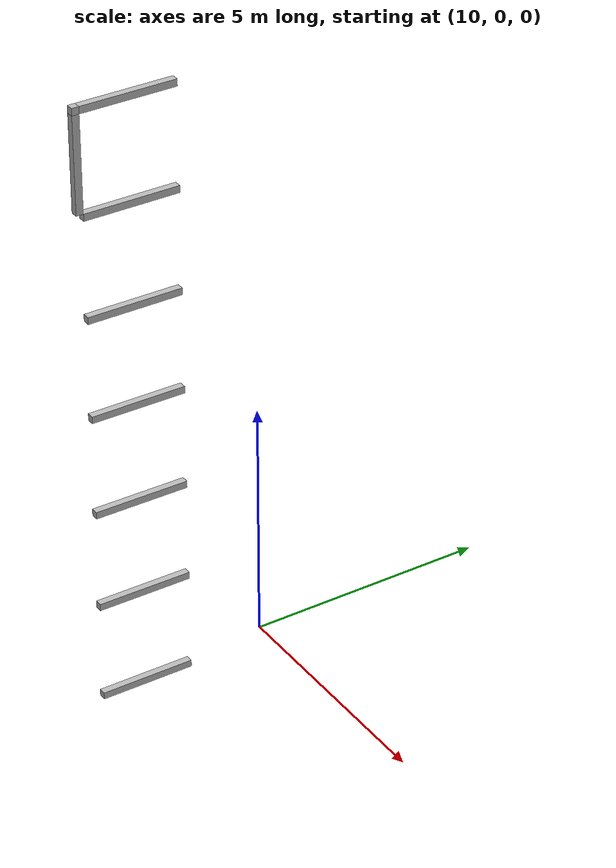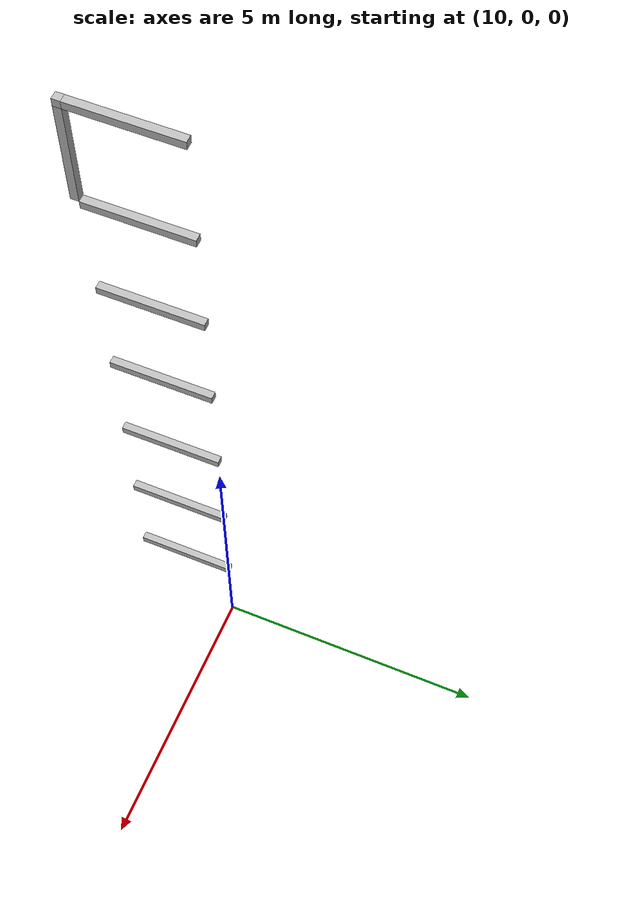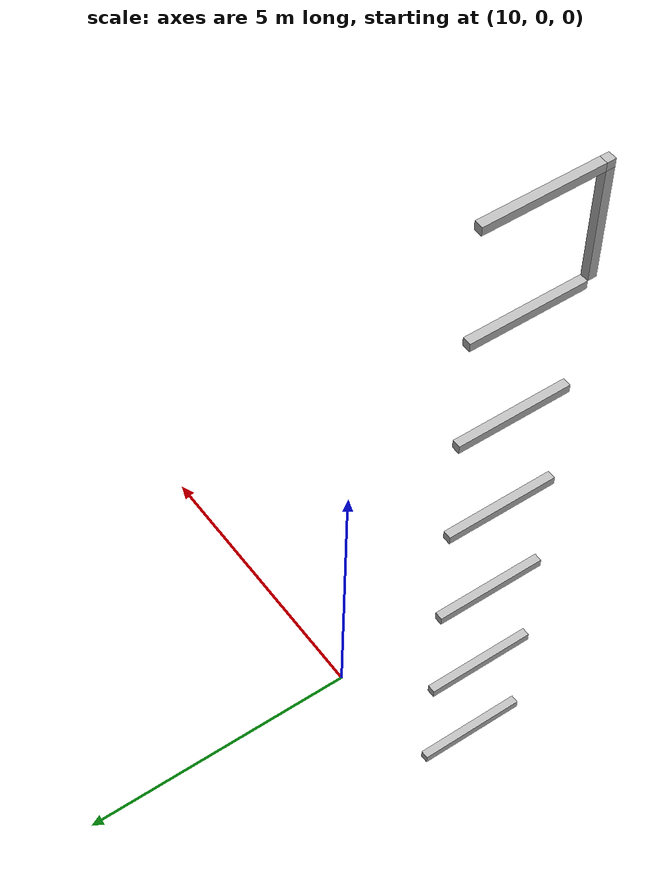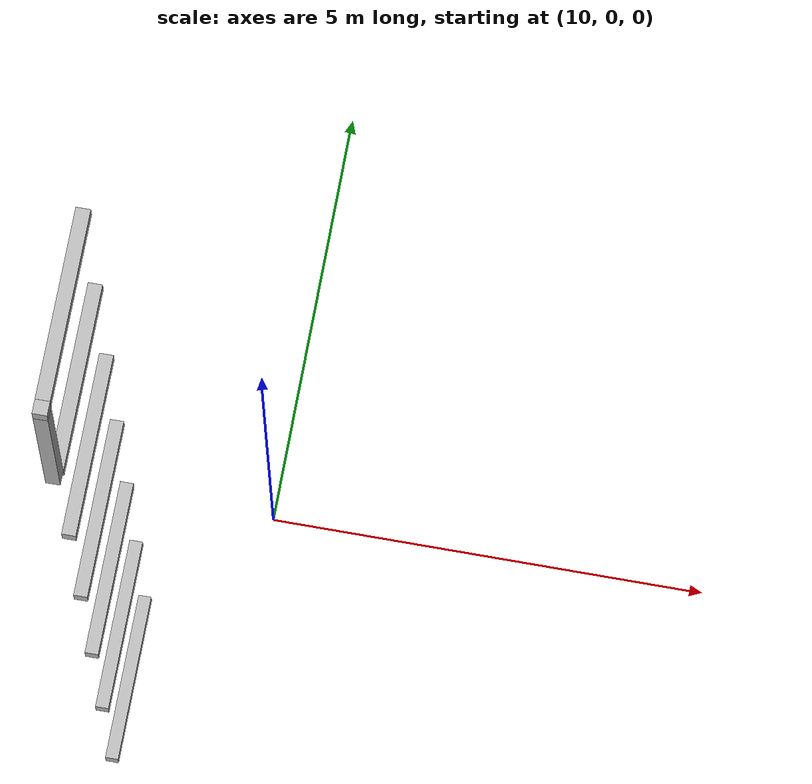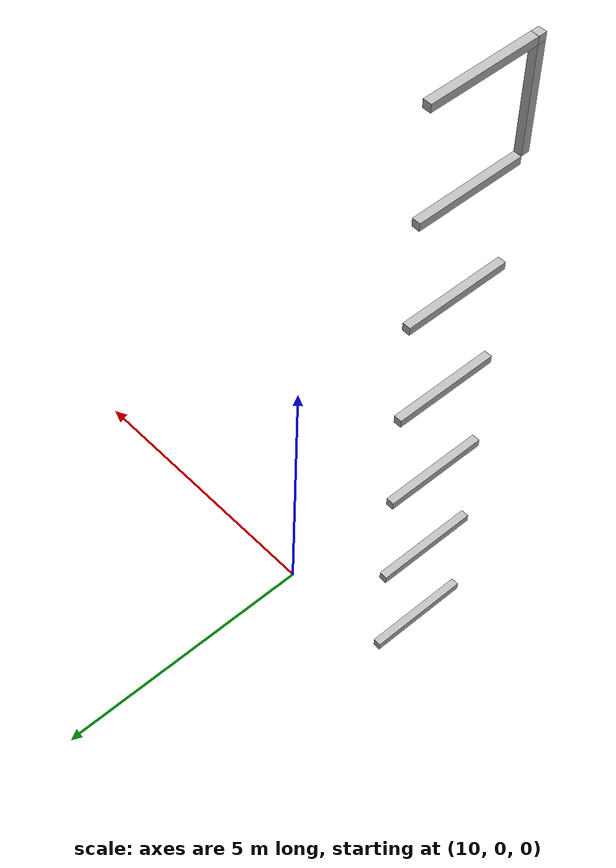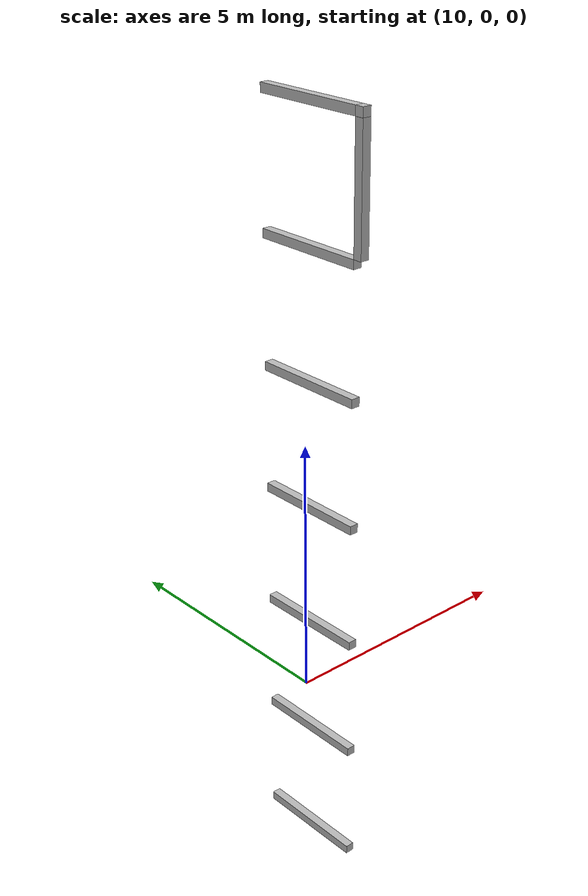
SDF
<sdf version="1.7">
 <world name="default">
  <model name="orthogonal_747_2.000.15_TS">
   <static>1</static>
   <link name="y_link_0_1_7">
    <inertial>
     <mass>1</mass>
     <inertia>
      <ixx>0.166667</ixx>
      <ixy>0</ixy>
      <ixz>0</ixz>
      <iyy>0.166667</iyy>
      <iyz>0</iyz>
      <izz>0.166667</izz>
     </inertia>
    </inertial>
    <pose>15.05 3.225 1.075 0 -0 0</pose>
    <visual name="visual_0">
     <laser_retro>309</laser_retro>
     <geometry><box><size>0.15 1e-06 0.15</size></box></geometry>
     <material>
      <script><name>Gazebo/Grey</name><uri>file://media/materials/scripts/gazebo.material</uri></script>
      <shader type="pixel"><normal_map>__default__</normal_map></shader>
      <ambient>0.678 0.498 0.659 1</ambient>
      <diffuse>0.7 0.7 0.7 1</diffuse>
      <specular>0.01 0.01 0.01 1</specular>
      <emissive>0 0 0 1</emissive>
     </material>
     <pose>0 -1 0 0 -0 0</pose>
     <transparency>1</transparency>
    </visual>
    <visual name="visual_1">
     <laser_retro>310</laser_retro>
     <geometry><box><size>0.15 1e-06 0.15</size></box></geometry>
     <material>
      <script><name>Gazebo/Grey</name><uri>file://media/materials/scripts/gazebo.material</uri></script>
      <shader type="pixel"><normal_map>__default__</normal_map></shader>
      <ambient>0.447 0.624 0.812 1</ambient>
      <diffuse>0.7 0.7 0.7 1</diffuse>
      <specular>0.01 0.01 0.01 1</specular>
      <emissive>0 0 0 1</emissive>
     </material>
     <pose>0 1 0 0 -0 0</pose>
     <transparency>1</transparency>
    </visual>
    <visual name="visual_2">
     <laser_retro>311</laser_retro>
     <geometry><box><size>0.15 2 1e-06</size></box></geometry>
     <material>
      <script><name>Gazebo/Grey</name><uri>file://media/materials/scripts/gazebo.material</uri></script>
      <shader type="pixel"><normal_map>__default__</normal_map></shader>
      <ambient>0.988 0.686 0.243 1</ambient>
      <diffuse>0.7 0.7 0.7 1</diffuse>
      <specular>0.01 0.01 0.01 1</specular>
      <emissive>0 0 0 1</emissive>
     </material>
     <pose>0 0 -0.075 0 -0 0</pose>
     <transparency>1</transparency>
    </visual>
    <visual name="visual_3">
     <laser_retro>312</laser_retro>
     <geometry><box><size>1e-06 2 0.15</size></box></geometry>
     <material>
      <script><name>Gazebo/Grey</name><uri>file://media/materials/scripts/gazebo.material</uri></script>
      <shader type="pixel"><normal_map>__default__</normal_map></shader>
      <ambient>0.988 0.914 0.31 1</ambient>
      <diffuse>0.7 0.7 0.7 1</diffuse>
      <specular>0.01 0.01 0.01 1</specular>
      <emissive>0 0 0 1</emissive>
     </material>
     <pose>0.075 0 0 0 -0 0</pose>
     <transparency>1</transparency>
    </visual>
    <visual name="visual_4">
     <laser_retro>313</laser_retro>
     <geometry><box><size>0.15 2 1e-06</size></box></geometry>
     <material>
      <script><name>Gazebo/Grey</name><uri>file://media/materials/scripts/gazebo.material</uri></script>
      <shader type="pixel"><normal_map>__default__</normal_map></shader>
      <ambient>0.937 0.161 0.161 1</ambient>
      <diffuse>0.7 0.7 0.7 1</diffuse>
      <specular>0.01 0.01 0.01 1</specular>
      <emissive>0 0 0 1</emissive>
     </material>
     <pose>0 0 0.075 0 -0 0</pose>
     <transparency>1</transparency>
    </visual>
    <visual name="visual_5">
     <laser_retro>314</laser_retro>
     <geometry><box><size>1e-06 2 0.15</size></box></geometry>
     <material>
      <script><name>Gazebo/Grey</name><uri>file://media/materials/scripts/gazebo.material</uri></script>
      <shader type="pixel"><normal_map>__default__</normal_map></shader>
      <ambient>0.541 0.886 0.204 1</ambient>
      <diffuse>0.7 0.7 0.7 1</diffuse>
      <specular>0.01 0.01 0.01 1</specular>
      <emissive>0 0 0 1</emissive>
     </material>
     <pose>-0.075 0 0 0 -0 0</pose>
     <transparency>1</transparency>
    </visual>
    <visual name="visual_texture">
     <geometry><box><size>0.149985 1.9998 0.149985</size></box></geometry>
     <material>
      <script>
       <uri>model://BASE_MODELS/simple_block_v2_textured/materials/scripts</uri>
       <uri>model://BASE_MODELS/simple_block_v2_textured/materials/textures</uri>
       <name>metal</name>
      </script>
     </material>
     <laser_retro>315</laser_retro>
    </visual>
    <collision name="collision">
     <geometry><box><size>0.15 2 0.15</size></box></geometry>
     <surface>
      <friction>
       <ode><mu>1</mu><mu2>1</mu2><fdir1>0 0 0</fdir1><slip1>0</slip1><slip2>0</slip2></ode>
       <torsional>
        <coefficient>1</coefficient>
        <patch_radius>0</patch_radius>
        <surface_radius>0</surface_radius>
        <use_patch_radius>1</use_patch_radius>
        <ode><slip>0</slip></ode>
       </torsional>
      </friction>
      <bounce><restitution_coefficient>0</restitution_coefficient><threshold>1e+06</threshold></bounce>
      <contact>
       <collide_without_contact>0</collide_without_contact>
       <collide_without_contact_bitmask>1</collide_without_contact_bitmask>
       <collide_bitmask>1</collide_bitmask>
       <ode>
        <soft_cfm>0</soft_cfm>
        <soft_erp>0.2</soft_erp>
        <kp>1e+13</kp>
        <kd>1</kd>
        <max_vel>0.01</max_vel>
        <min_depth>0</min_depth>
       </ode>
       <bullet>
        <split_impulse>1</split_impulse>
        <split_impulse_penetration_threshold>-0.01</split_impulse_penetration_threshold>
        <soft_cfm>0</soft_cfm>
        <soft_erp>0.2</soft_erp>
        <kp>1e+13</kp>
        <kd>1</kd>
       </bullet>
      </contact>
     </surface>
    </collision>
   </link>
   <link name="y_link_1_1_7">
    <inertial>
     <mass>1</mass>
     <inertia>
      <ixx>0.166667</ixx>
      <ixy>0</ixy>
      <ixz>0</ixz>
      <iyy>0.166667</iyy>
      <iyz>0</iyz>
      <izz>0.166667</izz>
     </inertia>
    </inertial>
    <pose>15.05 3.225 3.225 0 -0 0</pose>
    <visual name="visual_0">
     <laser_retro>1121</laser_retro>
     <geometry><box><size>0.15 1e-06 0.15</size></box></geometry>
     <material>
      <script><name>Gazebo/Grey</name><uri>file://media/materials/scripts/gazebo.material</uri></script>
      <shader type="pixel"><normal_map>__default__</normal_map></shader>
      <ambient>0.678 0.498 0.659 1</ambient>
      <diffuse>0.7 0.7 0.7 1</diffuse>
      <specular>0.01 0.01 0.01 1</specular>
      <emissive>0 0 0 1</emissive>
     </material>
     <pose>0 -1 0 0 -0 0</pose>
     <transparency>1</transparency>
    </visual>
    <visual name="visual_1">
     <laser_retro>1122</laser_retro>
     <geometry><box><size>0.15 1e-06 0.15</size></box></geometry>
     <material>
      <script><name>Gazebo/Grey</name><uri>file://media/materials/scripts/gazebo.material</uri></script>
      <shader type="pixel"><normal_map>__default__</normal_map></shader>
      <ambient>0.447 0.624 0.812 1</ambient>
      <diffuse>0.7 0.7 0.7 1</diffuse>
      <specular>0.01 0.01 0.01 1</specular>
      <emissive>0 0 0 1</emissive>
     </material>
     <pose>0 1 0 0 -0 0</pose>
     <transparency>1</transparency>
    </visual>
    <visual name="visual_2">
     <laser_retro>1123</laser_retro>
     <geometry><box><size>0.15 2 1e-06</size></box></geometry>
     <material>
      <script><name>Gazebo/Grey</name><uri>file://media/materials/scripts/gazebo.material</uri></script>
      <shader type="pixel"><normal_map>__default__</normal_map></shader>
      <ambient>0.988 0.686 0.243 1</ambient>
      <diffuse>0.7 0.7 0.7 1</diffuse>
      <specular>0.01 0.01 0.01 1</specular>
      <emissive>0 0 0 1</emissive>
     </material>
     <pose>0 0 -0.075 0 -0 0</pose>
     <transparency>1</transparency>
    </visual>
    <visual name="visual_3">
     <laser_retro>1124</laser_retro>
     <geometry><box><size>1e-06 2 0.15</size></box></geometry>
     <material>
      <script><name>Gazebo/Grey</name><uri>file://media/materials/scripts/gazebo.material</uri></script>
      <shader type="pixel"><normal_map>__default__</normal_map></shader>
      <ambient>0.988 0.914 0.31 1</ambient>
      <diffuse>0.7 0.7 0.7 1</diffuse>
      <specular>0.01 0.01 0.01 1</specular>
      <emissive>0 0 0 1</emissive>
     </material>
     <pose>0.075 0 0 0 -0 0</pose>
     <transparency>1</transparency>
    </visual>
    <visual name="visual_4">
     <laser_retro>1125</laser_retro>
     <geometry><box><size>0.15 2 1e-06</size></box></geometry>
     <material>
      <script><name>Gazebo/Grey</name><uri>file://media/materials/scripts/gazebo.material</uri></script>
      <shader type="pixel"><normal_map>__default__</normal_map></shader>
      <ambient>0.937 0.161 0.161 1</ambient>
      <diffuse>0.7 0.7 0.7 1</diffuse>
      <specular>0.01 0.01 0.01 1</specular>
      <emissive>0 0 0 1</emissive>
     </material>
     <pose>0 0 0.075 0 -0 0</pose>
     <transparency>1</transparency>
    </visual>
    <visual name="visual_5">
     <laser_retro>1126</laser_retro>
     <geometry><box><size>1e-06 2 0.15</size></box></geometry>
     <material>
      <script><name>Gazebo/Grey</name><uri>file://media/materials/scripts/gazebo.material</uri></script>
      <shader type="pixel"><normal_map>__default__</normal_map></shader>
      <ambient>0.541 0.886 0.204 1</ambient>
      <diffuse>0.7 0.7 0.7 1</diffuse>
      <specular>0.01 0.01 0.01 1</specular>
      <emissive>0 0 0 1</emissive>
     </material>
     <pose>-0.075 0 0 0 -0 0</pose>
     <transparency>1</transparency>
    </visual>
    <visual name="visual_texture">
     <geometry><box><size>0.149985 1.9998 0.149985</size></box></geometry>
     <material>
      <script>
       <uri>model://BASE_MODELS/simple_block_v2_textured/materials/scripts</uri>
       <uri>model://BASE_MODELS/simple_block_v2_textured/materials/textures</uri>
       <name>metal</name>
      </script>
     </material>
     <laser_retro>1127</laser_retro>
    </visual>
    <collision name="collision">
     <geometry><box><size>0.15 2 0.15</size></box></geometry>
     <surface>
      <friction>
       <ode><mu>1</mu><mu2>1</mu2><fdir1>0 0 0</fdir1><slip1>0</slip1><slip2>0</slip2></ode>
       <torsional>
        <coefficient>1</coefficient>
        <patch_radius>0</patch_radius>
        <surface_radius>0</surface_radius>
        <use_patch_radius>1</use_patch_radius>
        <ode><slip>0</slip></ode>
       </torsional>
      </friction>
      <bounce><restitution_coefficient>0</restitution_coefficient><threshold>1e+06</threshold></bounce>
      <contact>
       <collide_without_contact>0</collide_without_contact>
       <collide_without_contact_bitmask>1</collide_without_contact_bitmask>
       <collide_bitmask>1</collide_bitmask>
       <ode>
        <soft_cfm>0</soft_cfm>
        <soft_erp>0.2</soft_erp>
        <kp>1e+13</kp>
        <kd>1</kd>
        <max_vel>0.01</max_vel>
        <min_depth>0</min_depth>
       </ode>
       <bullet>
        <split_impulse>1</split_impulse>
        <split_impulse_penetration_threshold>-0.01</split_impulse_penetration_threshold>
        <soft_cfm>0</soft_cfm>
        <soft_erp>0.2</soft_erp>
        <kp>1e+13</kp>
        <kd>1</kd>
       </bullet>
      </contact>
     </surface>
    </collision>
   </link>
   <link name="y_link_2_1_7">
    <inertial>
     <mass>1</mass>
     <inertia>
      <ixx>0.166667</ixx>
      <ixy>0</ixy>
      <ixz>0</ixz>
      <iyy>0.166667</iyy>
      <iyz>0</iyz>
      <izz>0.166667</izz>
     </inertia>
    </inertial>
    <pose>15.05 3.225 5.375 0 -0 0</pose>
    <visual name="visual_0">
     <laser_retro>2024</laser_retro>
     <geometry><box><size>0.15 1e-06 0.15</size></box></geometry>
     <material>
      <script><name>Gazebo/Grey</name><uri>file://media/materials/scripts/gazebo.material</uri></script>
      <shader type="pixel"><normal_map>__default__</normal_map></shader>
      <ambient>0.678 0.498 0.659 1</ambient>
      <diffuse>0.7 0.7 0.7 1</diffuse>
      <specular>0.01 0.01 0.01 1</specular>
      <emissive>0 0 0 1</emissive>
     </material>
     <pose>0 -1 0 0 -0 0</pose>
     <transparency>1</transparency>
    </visual>
    <visual name="visual_1">
     <laser_retro>2025</laser_retro>
     <geometry><box><size>0.15 1e-06 0.15</size></box></geometry>
     <material>
      <script><name>Gazebo/Grey</name><uri>file://media/materials/scripts/gazebo.material</uri></script>
      <shader type="pixel"><normal_map>__default__</normal_map></shader>
      <ambient>0.447 0.624 0.812 1</ambient>
      <diffuse>0.7 0.7 0.7 1</diffuse>
      <specular>0.01 0.01 0.01 1</specular>
      <emissive>0 0 0 1</emissive>
     </material>
     <pose>0 1 0 0 -0 0</pose>
     <transparency>1</transparency>
    </visual>
    <visual name="visual_2">
     <laser_retro>2026</laser_retro>
     <geometry><box><size>0.15 2 1e-06</size></box></geometry>
     <material>
      <script><name>Gazebo/Grey</name><uri>file://media/materials/scripts/gazebo.material</uri></script>
      <shader type="pixel"><normal_map>__default__</normal_map></shader>
      <ambient>0.988 0.686 0.243 1</ambient>
      <diffuse>0.7 0.7 0.7 1</diffuse>
      <specular>0.01 0.01 0.01 1</specular>
      <emissive>0 0 0 1</emissive>
     </material>
     <pose>0 0 -0.075 0 -0 0</pose>
     <transparency>1</transparency>
    </visual>
    <visual name="visual_3">
     <laser_retro>2027</laser_retro>
     <geometry><box><size>1e-06 2 0.15</size></box></geometry>
     <material>
      <script><name>Gazebo/Grey</name><uri>file://media/materials/scripts/gazebo.material</uri></script>
      <shader type="pixel"><normal_map>__default__</normal_map></shader>
      <ambient>0.988 0.914 0.31 1</ambient>
      <diffuse>0.7 0.7 0.7 1</diffuse>
      <specular>0.01 0.01 0.01 1</specular>
      <emissive>0 0 0 1</emissive>
     </material>
     <pose>0.075 0 0 0 -0 0</pose>
     <transparency>1</transparency>
    </visual>
    <visual name="visual_4">
     <laser_retro>2028</laser_retro>
     <geometry><box><size>0.15 2 1e-06</size></box></geometry>
     <material>
      <script><name>Gazebo/Grey</name><uri>file://media/materials/scripts/gazebo.material</uri></script>
      <shader type="pixel"><normal_map>__default__</normal_map></shader>
      <ambient>0.937 0.161 0.161 1</ambient>
      <diffuse>0.7 0.7 0.7 1</diffuse>
      <specular>0.01 0.01 0.01 1</specular>
      <emissive>0 0 0 1</emissive>
     </material>
     <pose>0 0 0.075 0 -0 0</pose>
     <transparency>1</transparency>
    </visual>
    <visual name="visual_5">
     <laser_retro>2029</laser_retro>
     <geometry><box><size>1e-06 2 0.15</size></box></geometry>
     <material>
      <script><name>Gazebo/Grey</name><uri>file://media/materials/scripts/gazebo.material</uri></script>
      <shader type="pixel"><normal_map>__default__</normal_map></shader>
      <ambient>0.541 0.886 0.204 1</ambient>
      <diffuse>0.7 0.7 0.7 1</diffuse>
      <specular>0.01 0.01 0.01 1</specular>
      <emissive>0 0 0 1</emissive>
     </material>
     <pose>-0.075 0 0 0 -0 0</pose>
     <transparency>1</transparency>
    </visual>
    <visual name="visual_texture">
     <geometry><box><size>0.149985 1.9998 0.149985</size></box></geometry>
     <material>
      <script>
       <uri>model://BASE_MODELS/simple_block_v2_textured/materials/scripts</uri>
       <uri>model://BASE_MODELS/simple_block_v2_textured/materials/textures</uri>
       <name>metal</name>
      </script>
     </material>
     <laser_retro>2030</laser_retro>
    </visual>
    <collision name="collision">
     <geometry><box><size>0.15 2 0.15</size></box></geometry>
     <surface>
      <friction>
       <ode><mu>1</mu><mu2>1</mu2><fdir1>0 0 0</fdir1><slip1>0</slip1><slip2>0</slip2></ode>
       <torsional>
        <coefficient>1</coefficient>
        <patch_radius>0</patch_radius>
        <surface_radius>0</surface_radius>
        <use_patch_radius>1</use_patch_radius>
        <ode><slip>0</slip></ode>
       </torsional>
      </friction>
      <bounce><restitution_coefficient>0</restitution_coefficient><threshold>1e+06</threshold></bounce>
      <contact>
       <collide_without_contact>0</collide_without_contact>
       <collide_without_contact_bitmask>1</collide_without_contact_bitmask>
       <collide_bitmask>1</collide_bitmask>
       <ode>
        <soft_cfm>0</soft_cfm>
        <soft_erp>0.2</soft_erp>
        <kp>1e+13</kp>
        <kd>1</kd>
        <max_vel>0.01</max_vel>
        <min_depth>0</min_depth>
       </ode>
       <bullet>
        <split_impulse>1</split_impulse>
        <split_impulse_penetration_threshold>-0.01</split_impulse_penetration_threshold>
        <soft_cfm>0</soft_cfm>
        <soft_erp>0.2</soft_erp>
        <kp>1e+13</kp>
        <kd>1</kd>
       </bullet>
      </contact>
     </surface>
    </collision>
   </link>
   <link name="y_link_3_1_7">
    <inertial>
     <mass>1</mass>
     <inertia>
      <ixx>0.166667</ixx>
      <ixy>0</ixy>
      <ixz>0</ixz>
      <iyy>0.166667</iyy>
      <iyz>0</iyz>
      <izz>0.166667</izz>
     </inertia>
    </inertial>
    <pose>15.05 3.225 7.525 0 -0 0</pose>
    <visual name="visual_0">
     <laser_retro>2927</laser_retro>
     <geometry><box><size>0.15 1e-06 0.15</size></box></geometry>
     <material>
      <script><name>Gazebo/Grey</name><uri>file://media/materials/scripts/gazebo.material</uri></script>
      <shader type="pixel"><normal_map>__default__</normal_map></shader>
      <ambient>0.678 0.498 0.659 1</ambient>
      <diffuse>0.7 0.7 0.7 1</diffuse>
      <specular>0.01 0.01 0.01 1</specular>
      <emissive>0 0 0 1</emissive>
     </material>
     <pose>0 -1 0 0 -0 0</pose>
     <transparency>1</transparency>
    </visual>
    <visual name="visual_1">
     <laser_retro>2928</laser_retro>
     <geometry><box><size>0.15 1e-06 0.15</size></box></geometry>
     <material>
      <script><name>Gazebo/Grey</name><uri>file://media/materials/scripts/gazebo.material</uri></script>
      <shader type="pixel"><normal_map>__default__</normal_map></shader>
      <ambient>0.447 0.624 0.812 1</ambient>
      <diffuse>0.7 0.7 0.7 1</diffuse>
      <specular>0.01 0.01 0.01 1</specular>
      <emissive>0 0 0 1</emissive>
     </material>
     <pose>0 1 0 0 -0 0</pose>
     <transparency>1</transparency>
    </visual>
    <visual name="visual_2">
     <laser_retro>2929</laser_retro>
     <geometry><box><size>0.15 2 1e-06</size></box></geometry>
     <material>
      <script><name>Gazebo/Grey</name><uri>file://media/materials/scripts/gazebo.material</uri></script>
      <shader type="pixel"><normal_map>__default__</normal_map></shader>
      <ambient>0.988 0.686 0.243 1</ambient>
      <diffuse>0.7 0.7 0.7 1</diffuse>
      <specular>0.01 0.01 0.01 1</specular>
      <emissive>0 0 0 1</emissive>
     </material>
     <pose>0 0 -0.075 0 -0 0</pose>
     <transparency>1</transparency>
    </visual>
    <visual name="visual_3">
     <laser_retro>2930</laser_retro>
     <geometry><box><size>1e-06 2 0.15</size></box></geometry>
     <material>
      <script><name>Gazebo/Grey</name><uri>file://media/materials/scripts/gazebo.material</uri></script>
      <shader type="pixel"><normal_map>__default__</normal_map></shader>
      <ambient>0.988 0.914 0.31 1</ambient>
      <diffuse>0.7 0.7 0.7 1</diffuse>
      <specular>0.01 0.01 0.01 1</specular>
      <emissive>0 0 0 1</emissive>
     </material>
     <pose>0.075 0 0 0 -0 0</pose>
     <transparency>1</transparency>
    </visual>
    <visual name="visual_4">
     <laser_retro>2931</laser_retro>
     <geometry><box><size>0.15 2 1e-06</size></box></geometry>
     <material>
      <script><name>Gazebo/Grey</name><uri>file://media/materials/scripts/gazebo.material</uri></script>
      <shader type="pixel"><normal_map>__default__</normal_map></shader>
      <ambient>0.937 0.161 0.161 1</ambient>
      <diffuse>0.7 0.7 0.7 1</diffuse>
      <specular>0.01 0.01 0.01 1</specular>
      <emissive>0 0 0 1</emissive>
     </material>
     <pose>0 0 0.075 0 -0 0</pose>
     <transparency>1</transparency>
    </visual>
    <visual name="visual_5">
     <laser_retro>2932</laser_retro>
     <geometry><box><size>1e-06 2 0.15</size></box></geometry>
     <material>
      <script><name>Gazebo/Grey</name><uri>file://media/materials/scripts/gazebo.material</uri></script>
      <shader type="pixel"><normal_map>__default__</normal_map></shader>
      <ambient>0.541 0.886 0.204 1</ambient>
      <diffuse>0.7 0.7 0.7 1</diffuse>
      <specular>0.01 0.01 0.01 1</specular>
      <emissive>0 0 0 1</emissive>
     </material>
     <pose>-0.075 0 0 0 -0 0</pose>
     <transparency>1</transparency>
    </visual>
    <visual name="visual_texture">
     <geometry><box><size>0.149985 1.9998 0.149985</size></box></geometry>
     <material>
      <script>
       <uri>model://BASE_MODELS/simple_block_v2_textured/materials/scripts</uri>
       <uri>model://BASE_MODELS/simple_block_v2_textured/materials/textures</uri>
       <name>metal</name>
      </script>
     </material>
     <laser_retro>2933</laser_retro>
    </visual>
    <collision name="collision">
     <geometry><box><size>0.15 2 0.15</size></box></geometry>
     <surface>
      <friction>
       <ode><mu>1</mu><mu2>1</mu2><fdir1>0 0 0</fdir1><slip1>0</slip1><slip2>0</slip2></ode>
       <torsional>
        <coefficient>1</coefficient>
        <patch_radius>0</patch_radius>
        <surface_radius>0</surface_radius>
        <use_patch_radius>1</use_patch_radius>
        <ode><slip>0</slip></ode>
       </torsional>
      </friction>
      <bounce><restitution_coefficient>0</restitution_coefficient><threshold>1e+06</threshold></bounce>
      <contact>
       <collide_without_contact>0</collide_without_contact>
       <collide_without_contact_bitmask>1</collide_without_contact_bitmask>
       <collide_bitmask>1</collide_bitmask>
       <ode>
        <soft_cfm>0</soft_cfm>
        <soft_erp>0.2</soft_erp>
        <kp>1e+13</kp>
        <kd>1</kd>
        <max_vel>0.01</max_vel>
        <min_depth>0</min_depth>
       </ode>
       <bullet>
        <split_impulse>1</split_impulse>
        <split_impulse_penetration_threshold>-0.01</split_impulse_penetration_threshold>
        <soft_cfm>0</soft_cfm>
        <soft_erp>0.2</soft_erp>
        <kp>1e+13</kp>
        <kd>1</kd>
       </bullet>
      </contact>
     </surface>
    </collision>
   </link>
   <link name="y_link_4_1_7">
    <inertial>
     <mass>1</mass>
     <inertia>
      <ixx>0.166667</ixx>
      <ixy>0</ixy>
      <ixz>0</ixz>
      <iyy>0.166667</iyy>
      <iyz>0</iyz>
      <izz>0.166667</izz>
     </inertia>
    </inertial>
    <pose>15.05 3.225 9.675 0 -0 0</pose>
    <visual name="visual_0">
     <laser_retro>3830</laser_retro>
     <geometry><box><size>0.15 1e-06 0.15</size></box></geometry>
     <material>
      <script><name>Gazebo/Grey</name><uri>file://media/materials/scripts/gazebo.material</uri></script>
      <shader type="pixel"><normal_map>__default__</normal_map></shader>
      <ambient>0.678 0.498 0.659 1</ambient>
      <diffuse>0.7 0.7 0.7 1</diffuse>
      <specular>0.01 0.01 0.01 1</specular>
      <emissive>0 0 0 1</emissive>
     </material>
     <pose>0 -1 0 0 -0 0</pose>
     <transparency>1</transparency>
    </visual>
    <visual name="visual_1">
     <laser_retro>3831</laser_retro>
     <geometry><box><size>0.15 1e-06 0.15</size></box></geometry>
     <material>
      <script><name>Gazebo/Grey</name><uri>file://media/materials/scripts/gazebo.material</uri></script>
      <shader type="pixel"><normal_map>__default__</normal_map></shader>
      <ambient>0.447 0.624 0.812 1</ambient>
      <diffuse>0.7 0.7 0.7 1</diffuse>
      <specular>0.01 0.01 0.01 1</specular>
      <emissive>0 0 0 1</emissive>
     </material>
     <pose>0 1 0 0 -0 0</pose>
     <transparency>1</transparency>
    </visual>
    <visual name="visual_2">
     <laser_retro>3832</laser_retro>
     <geometry><box><size>0.15 2 1e-06</size></box></geometry>
     <material>
      <script><name>Gazebo/Grey</name><uri>file://media/materials/scripts/gazebo.material</uri></script>
      <shader type="pixel"><normal_map>__default__</normal_map></shader>
      <ambient>0.988 0.686 0.243 1</ambient>
      <diffuse>0.7 0.7 0.7 1</diffuse>
      <specular>0.01 0.01 0.01 1</specular>
      <emissive>0 0 0 1</emissive>
     </material>
     <pose>0 0 -0.075 0 -0 0</pose>
     <transparency>1</transparency>
    </visual>
    <visual name="visual_3">
     <laser_retro>3833</laser_retro>
     <geometry><box><size>1e-06 2 0.15</size></box></geometry>
     <material>
      <script><name>Gazebo/Grey</name><uri>file://media/materials/scripts/gazebo.material</uri></script>
      <shader type="pixel"><normal_map>__default__</normal_map></shader>
      <ambient>0.988 0.914 0.31 1</ambient>
      <diffuse>0.7 0.7 0.7 1</diffuse>
      <specular>0.01 0.01 0.01 1</specular>
      <emissive>0 0 0 1</emissive>
     </material>
     <pose>0.075 0 0 0 -0 0</pose>
     <transparency>1</transparency>
    </visual>
    <visual name="visual_4">
     <laser_retro>3834</laser_retro>
     <geometry><box><size>0.15 2 1e-06</size></box></geometry>
     <material>
      <script><name>Gazebo/Grey</name><uri>file://media/materials/scripts/gazebo.material</uri></script>
      <shader type="pixel"><normal_map>__default__</normal_map></shader>
      <ambient>0.937 0.161 0.161 1</ambient>
      <diffuse>0.7 0.7 0.7 1</diffuse>
      <specular>0.01 0.01 0.01 1</specular>
      <emissive>0 0 0 1</emissive>
     </material>
     <pose>0 0 0.075 0 -0 0</pose>
     <transparency>1</transparency>
    </visual>
    <visual name="visual_5">
     <laser_retro>3835</laser_retro>
     <geometry><box><size>1e-06 2 0.15</size></box></geometry>
     <material>
      <script><name>Gazebo/Grey</name><uri>file://media/materials/scripts/gazebo.material</uri></script>
      <shader type="pixel"><normal_map>__default__</normal_map></shader>
      <ambient>0.541 0.886 0.204 1</ambient>
      <diffuse>0.7 0.7 0.7 1</diffuse>
      <specular>0.01 0.01 0.01 1</specular>
      <emissive>0 0 0 1</emissive>
     </material>
     <pose>-0.075 0 0 0 -0 0</pose>
     <transparency>1</transparency>
    </visual>
    <visual name="visual_texture">
     <geometry><box><size>0.149985 1.9998 0.149985</size></box></geometry>
     <material>
      <script>
       <uri>model://BASE_MODELS/simple_block_v2_textured/materials/scripts</uri>
       <uri>model://BASE_MODELS/simple_block_v2_textured/materials/textures</uri>
       <name>metal</name>
      </script>
     </material>
     <laser_retro>3836</laser_retro>
    </visual>
    <collision name="collision">
     <geometry><box><size>0.15 2 0.15</size></box></geometry>
     <surface>
      <friction>
       <ode><mu>1</mu><mu2>1</mu2><fdir1>0 0 0</fdir1><slip1>0</slip1><slip2>0</slip2></ode>
       <torsional>
        <coefficient>1</coefficient>
        <patch_radius>0</patch_radius>
        <surface_radius>0</surface_radius>
        <use_patch_radius>1</use_patch_radius>
        <ode><slip>0</slip></ode>
       </torsional>
      </friction>
      <bounce><restitution_coefficient>0</restitution_coefficient><threshold>1e+06</threshold></bounce>
      <contact>
       <collide_without_contact>0</collide_without_contact>
       <collide_without_contact_bitmask>1</collide_without_contact_bitmask>
       <collide_bitmask>1</collide_bitmask>
       <ode>
        <soft_cfm>0</soft_cfm>
        <soft_erp>0.2</soft_erp>
        <kp>1e+13</kp>
        <kd>1</kd>
        <max_vel>0.01</max_vel>
        <min_depth>0</min_depth>
       </ode>
       <bullet>
        <split_impulse>1</split_impulse>
        <split_impulse_penetration_threshold>-0.01</split_impulse_penetration_threshold>
        <soft_cfm>0</soft_cfm>
        <soft_erp>0.2</soft_erp>
        <kp>1e+13</kp>
        <kd>1</kd>
       </bullet>
      </contact>
     </surface>
    </collision>
   </link>
   <link name="y_link_5_1_7">
    <inertial>
     <mass>1</mass>
     <inertia>
      <ixx>0.166667</ixx>
      <ixy>0</ixy>
      <ixz>0</ixz>
      <iyy>0.166667</iyy>
      <iyz>0</iyz>
      <izz>0.166667</izz>
     </inertia>
    </inertial>
    <pose>15.05 3.225 11.825 0 -0 0</pose>
    <visual name="visual_0">
     <laser_retro>4733</laser_retro>
     <geometry><box><size>0.15 1e-06 0.15</size></box></geometry>
     <material>
      <script><name>Gazebo/Grey</name><uri>file://media/materials/scripts/gazebo.material</uri></script>
      <shader type="pixel"><normal_map>__default__</normal_map></shader>
      <ambient>0.678 0.498 0.659 1</ambient>
      <diffuse>0.7 0.7 0.7 1</diffuse>
      <specular>0.01 0.01 0.01 1</specular>
      <emissive>0 0 0 1</emissive>
     </material>
     <pose>0 -1 0 0 -0 0</pose>
     <transparency>1</transparency>
    </visual>
    <visual name="visual_1">
     <laser_retro>4734</laser_retro>
     <geometry><box><size>0.15 1e-06 0.15</size></box></geometry>
     <material>
      <script><name>Gazebo/Grey</name><uri>file://media/materials/scripts/gazebo.material</uri></script>
      <shader type="pixel"><normal_map>__default__</normal_map></shader>
      <ambient>0.447 0.624 0.812 1</ambient>
      <diffuse>0.7 0.7 0.7 1</diffuse>
      <specular>0.01 0.01 0.01 1</specular>
      <emissive>0 0 0 1</emissive>
     </material>
     <pose>0 1 0 0 -0 0</pose>
     <transparency>1</transparency>
    </visual>
    <visual name="visual_2">
     <laser_retro>4735</laser_retro>
     <geometry><box><size>0.15 2 1e-06</size></box></geometry>
     <material>
      <script><name>Gazebo/Grey</name><uri>file://media/materials/scripts/gazebo.material</uri></script>
      <shader type="pixel"><normal_map>__default__</normal_map></shader>
      <ambient>0.988 0.686 0.243 1</ambient>
      <diffuse>0.7 0.7 0.7 1</diffuse>
      <specular>0.01 0.01 0.01 1</specular>
      <emissive>0 0 0 1</emissive>
     </material>
     <pose>0 0 -0.075 0 -0 0</pose>
     <transparency>1</transparency>
    </visual>
    <visual name="visual_3">
     <laser_retro>4736</laser_retro>
     <geometry><box><size>1e-06 2 0.15</size></box></geometry>
     <material>
      <script><name>Gazebo/Grey</name><uri>file://media/materials/scripts/gazebo.material</uri></script>
      <shader type="pixel"><normal_map>__default__</normal_map></shader>
      <ambient>0.988 0.914 0.31 1</ambient>
      <diffuse>0.7 0.7 0.7 1</diffuse>
      <specular>0.01 0.01 0.01 1</specular>
      <emissive>0 0 0 1</emissive>
     </material>
     <pose>0.075 0 0 0 -0 0</pose>
     <transparency>1</transparency>
    </visual>
    <visual name="visual_4">
     <laser_retro>4737</laser_retro>
     <geometry><box><size>0.15 2 1e-06</size></box></geometry>
     <material>
      <script><name>Gazebo/Grey</name><uri>file://media/materials/scripts/gazebo.material</uri></script>
      <shader type="pixel"><normal_map>__default__</normal_map></shader>
      <ambient>0.937 0.161 0.161 1</ambient>
      <diffuse>0.7 0.7 0.7 1</diffuse>
      <specular>0.01 0.01 0.01 1</specular>
      <emissive>0 0 0 1</emissive>
     </material>
     <pose>0 0 0.075 0 -0 0</pose>
     <transparency>1</transparency>
    </visual>
    <visual name="visual_5">
     <laser_retro>4738</laser_retro>
     <geometry><box><size>1e-06 2 0.15</size></box></geometry>
     <material>
      <script><name>Gazebo/Grey</name><uri>file://media/materials/scripts/gazebo.material</uri></script>
      <shader type="pixel"><normal_map>__default__</normal_map></shader>
      <ambient>0.541 0.886 0.204 1</ambient>
      <diffuse>0.7 0.7 0.7 1</diffuse>
      <specular>0.01 0.01 0.01 1</specular>
      <emissive>0 0 0 1</emissive>
     </material>
     <pose>-0.075 0 0 0 -0 0</pose>
     <transparency>1</transparency>
    </visual>
    <visual name="visual_texture">
     <geometry><box><size>0.149985 1.9998 0.149985</size></box></geometry>
     <material>
      <script>
       <uri>model://BASE_MODELS/simple_block_v2_textured/materials/scripts</uri>
       <uri>model://BASE_MODELS/simple_block_v2_textured/materials/textures</uri>
       <name>metal</name>
      </script>
     </material>
     <laser_retro>4739</laser_retro>
    </visual>
    <collision name="collision">
     <geometry><box><size>0.15 2 0.15</size></box></geometry>
     <surface>
      <friction>
       <ode><mu>1</mu><mu2>1</mu2><fdir1>0 0 0</fdir1><slip1>0</slip1><slip2>0</slip2></ode>
       <torsional>
        <coefficient>1</coefficient>
        <patch_radius>0</patch_radius>
        <surface_radius>0</surface_radius>
        <use_patch_radius>1</use_patch_radius>
        <ode><slip>0</slip></ode>
       </torsional>
      </friction>
      <bounce><restitution_coefficient>0</restitution_coefficient><threshold>1e+06</threshold></bounce>
      <contact>
       <collide_without_contact>0</collide_without_contact>
       <collide_without_contact_bitmask>1</collide_without_contact_bitmask>
       <collide_bitmask>1</collide_bitmask>
       <ode>
        <soft_cfm>0</soft_cfm>
        <soft_erp>0.2</soft_erp>
        <kp>1e+13</kp>
        <kd>1</kd>
        <max_vel>0.01</max_vel>
        <min_depth>0</min_depth>
       </ode>
       <bullet>
        <split_impulse>1</split_impulse>
        <split_impulse_penetration_threshold>-0.01</split_impulse_penetration_threshold>
        <soft_cfm>0</soft_cfm>
        <soft_erp>0.2</soft_erp>
        <kp>1e+13</kp>
        <kd>1</kd>
       </bullet>
      </contact>
     </surface>
    </collision>
   </link>
   <link name="y_link_6_1_7">
    <inertial>
     <mass>1</mass>
     <inertia>
      <ixx>0.166667</ixx>
      <ixy>0</ixy>
      <ixz>0</ixz>
      <iyy>0.166667</iyy>
      <iyz>0</iyz>
      <izz>0.166667</izz>
     </inertia>
    </inertial>
    <pose>15.05 3.225 13.975 0 -0 0</pose>
    <visual name="visual_0">
     <laser_retro>5678</laser_retro>
     <geometry><box><size>0.15 1e-06 0.15</size></box></geometry>
     <material>
      <script><name>Gazebo/Grey</name><uri>file://media/materials/scripts/gazebo.material</uri></script>
      <shader type="pixel"><normal_map>__default__</normal_map></shader>
      <ambient>0.678 0.498 0.659 1</ambient>
      <diffuse>0.7 0.7 0.7 1</diffuse>
      <specular>0.01 0.01 0.01 1</specular>
      <emissive>0 0 0 1</emissive>
     </material>
     <pose>0 -1 0 0 -0 0</pose>
     <transparency>1</transparency>
    </visual>
    <visual name="visual_1">
     <laser_retro>5679</laser_retro>
     <geometry><box><size>0.15 1e-06 0.15</size></box></geometry>
     <material>
      <script><name>Gazebo/Grey</name><uri>file://media/materials/scripts/gazebo.material</uri></script>
      <shader type="pixel"><normal_map>__default__</normal_map></shader>
      <ambient>0.447 0.624 0.812 1</ambient>
      <diffuse>0.7 0.7 0.7 1</diffuse>
      <specular>0.01 0.01 0.01 1</specular>
      <emissive>0 0 0 1</emissive>
     </material>
     <pose>0 1 0 0 -0 0</pose>
     <transparency>1</transparency>
    </visual>
    <visual name="visual_2">
     <laser_retro>5680</laser_retro>
     <geometry><box><size>0.15 2 1e-06</size></box></geometry>
     <material>
      <script><name>Gazebo/Grey</name><uri>file://media/materials/scripts/gazebo.material</uri></script>
      <shader type="pixel"><normal_map>__default__</normal_map></shader>
      <ambient>0.988 0.686 0.243 1</ambient>
      <diffuse>0.7 0.7 0.7 1</diffuse>
      <specular>0.01 0.01 0.01 1</specular>
      <emissive>0 0 0 1</emissive>
     </material>
     <pose>0 0 -0.075 0 -0 0</pose>
     <transparency>1</transparency>
    </visual>
    <visual name="visual_3">
     <laser_retro>5681</laser_retro>
     <geometry><box><size>1e-06 2 0.15</size></box></geometry>
     <material>
      <script><name>Gazebo/Grey</name><uri>file://media/materials/scripts/gazebo.material</uri></script>
      <shader type="pixel"><normal_map>__default__</normal_map></shader>
      <ambient>0.988 0.914 0.31 1</ambient>
      <diffuse>0.7 0.7 0.7 1</diffuse>
      <specular>0.01 0.01 0.01 1</specular>
      <emissive>0 0 0 1</emissive>
     </material>
     <pose>0.075 0 0 0 -0 0</pose>
     <transparency>1</transparency>
    </visual>
    <visual name="visual_4">
     <laser_retro>5682</laser_retro>
     <geometry><box><size>0.15 2 1e-06</size></box></geometry>
     <material>
      <script><name>Gazebo/Grey</name><uri>file://media/materials/scripts/gazebo.material</uri></script>
      <shader type="pixel"><normal_map>__default__</normal_map></shader>
      <ambient>0.937 0.161 0.161 1</ambient>
      <diffuse>0.7 0.7 0.7 1</diffuse>
      <specular>0.01 0.01 0.01 1</specular>
      <emissive>0 0 0 1</emissive>
     </material>
     <pose>0 0 0.075 0 -0 0</pose>
     <transparency>1</transparency>
    </visual>
    <visual name="visual_5">
     <laser_retro>5683</laser_retro>
     <geometry><box><size>1e-06 2 0.15</size></box></geometry>
     <material>
      <script><name>Gazebo/Grey</name><uri>file://media/materials/scripts/gazebo.material</uri></script>
      <shader type="pixel"><normal_map>__default__</normal_map></shader>
      <ambient>0.541 0.886 0.204 1</ambient>
      <diffuse>0.7 0.7 0.7 1</diffuse>
      <specular>0.01 0.01 0.01 1</specular>
      <emissive>0 0 0 1</emissive>
     </material>
     <pose>-0.075 0 0 0 -0 0</pose>
     <transparency>1</transparency>
    </visual>
    <visual name="visual_texture">
     <geometry><box><size>0.149985 1.9998 0.149985</size></box></geometry>
     <material>
      <script>
       <uri>model://BASE_MODELS/simple_block_v2_textured/materials/scripts</uri>
       <uri>model://BASE_MODELS/simple_block_v2_textured/materials/textures</uri>
       <name>metal</name>
      </script>
     </material>
     <laser_retro>5684</laser_retro>
    </visual>
    <collision name="collision">
     <geometry><box><size>0.15 2 0.15</size></box></geometry>
     <surface>
      <friction>
       <ode><mu>1</mu><mu2>1</mu2><fdir1>0 0 0</fdir1><slip1>0</slip1><slip2>0</slip2></ode>
       <torsional>
        <coefficient>1</coefficient>
        <patch_radius>0</patch_radius>
        <surface_radius>0</surface_radius>
        <use_patch_radius>1</use_patch_radius>
        <ode><slip>0</slip></ode>
       </torsional>
      </friction>
      <bounce><restitution_coefficient>0</restitution_coefficient><threshold>1e+06</threshold></bounce>
      <contact>
       <collide_without_contact>0</collide_without_contact>
       <collide_without_contact_bitmask>1</collide_without_contact_bitmask>
       <collide_bitmask>1</collide_bitmask>
       <ode>
        <soft_cfm>0</soft_cfm>
        <soft_erp>0.2</soft_erp>
        <kp>1e+13</kp>
        <kd>1</kd>
        <max_vel>0.01</max_vel>
        <min_depth>0</min_depth>
       </ode>
       <bullet>
        <split_impulse>1</split_impulse>
        <split_impulse_penetration_threshold>-0.01</split_impulse_penetration_threshold>
        <soft_cfm>0</soft_cfm>
        <soft_erp>0.2</soft_erp>
        <kp>1e+13</kp>
        <kd>1</kd>
       </bullet>
      </contact>
     </surface>
    </collision>
   </link>
   <link name="u_link_6_1_7">
    <inertial>
     <mass>1</mass>
     <inertia>
      <ixx>0.166667</ixx>
      <ixy>0</ixy>
      <ixz>0</ixz>
      <iyy>0.166667</iyy>
      <iyz>0</iyz>
      <izz>0.166667</izz>
     </inertia>
    </inertial>
    <pose>15.05 2.15 13.975 0 -0 0</pose>
    <visual name="visual_0">
     <laser_retro>5685</laser_retro>
     <geometry><box><size>0.15 1e-06 0.15</size></box></geometry>
     <material>
      <script><name>Gazebo/Grey</name><uri>file://media/materials/scripts/gazebo.material</uri></script>
      <shader type="pixel"><normal_map>__default__</normal_map></shader>
      <ambient>0.678 0.498 0.659 1</ambient>
      <diffuse>0.7 0.7 0.7 1</diffuse>
      <specular>0.01 0.01 0.01 1</specular>
      <emissive>0 0 0 1</emissive>
     </material>
     <pose>0 -0.075 0 0 -0 0</pose>
     <transparency>1</transparency>
    </visual>
    <visual name="visual_1">
     <laser_retro>5686</laser_retro>
     <geometry><box><size>0.15 1e-06 0.15</size></box></geometry>
     <material>
      <script><name>Gazebo/Grey</name><uri>file://media/materials/scripts/gazebo.material</uri></script>
      <shader type="pixel"><normal_map>__default__</normal_map></shader>
      <ambient>0.447 0.624 0.812 1</ambient>
      <diffuse>0.7 0.7 0.7 1</diffuse>
      <specular>0.01 0.01 0.01 1</specular>
      <emissive>0 0 0 1</emissive>
     </material>
     <pose>0 0.075 0 0 -0 0</pose>
     <transparency>1</transparency>
    </visual>
    <visual name="visual_2">
     <laser_retro>5687</laser_retro>
     <geometry><box><size>0.15 0.15 1e-06</size></box></geometry>
     <material>
      <script><name>Gazebo/Grey</name><uri>file://media/materials/scripts/gazebo.material</uri></script>
      <shader type="pixel"><normal_map>__default__</normal_map></shader>
      <ambient>0.988 0.686 0.243 1</ambient>
      <diffuse>0.7 0.7 0.7 1</diffuse>
      <specular>0.01 0.01 0.01 1</specular>
      <emissive>0 0 0 1</emissive>
     </material>
     <pose>0 0 -0.075 0 -0 0</pose>
     <transparency>1</transparency>
    </visual>
    <visual name="visual_3">
     <laser_retro>5688</laser_retro>
     <geometry><box><size>1e-06 0.15 0.15</size></box></geometry>
     <material>
      <script><name>Gazebo/Grey</name><uri>file://media/materials/scripts/gazebo.material</uri></script>
      <shader type="pixel"><normal_map>__default__</normal_map></shader>
      <ambient>0.988 0.914 0.31 1</ambient>
      <diffuse>0.7 0.7 0.7 1</diffuse>
      <specular>0.01 0.01 0.01 1</specular>
      <emissive>0 0 0 1</emissive>
     </material>
     <pose>0.075 0 0 0 -0 0</pose>
     <transparency>1</transparency>
    </visual>
    <visual name="visual_4">
     <laser_retro>5689</laser_retro>
     <geometry><box><size>0.15 0.15 1e-06</size></box></geometry>
     <material>
      <script><name>Gazebo/Grey</name><uri>file://media/materials/scripts/gazebo.material</uri></script>
      <shader type="pixel"><normal_map>__default__</normal_map></shader>
      <ambient>0.937 0.161 0.161 1</ambient>
      <diffuse>0.7 0.7 0.7 1</diffuse>
      <specular>0.01 0.01 0.01 1</specular>
      <emissive>0 0 0 1</emissive>
     </material>
     <pose>0 0 0.075 0 -0 0</pose>
     <transparency>1</transparency>
    </visual>
    <visual name="visual_5">
     <laser_retro>5690</laser_retro>
     <geometry><box><size>1e-06 0.15 0.15</size></box></geometry>
     <material>
      <script><name>Gazebo/Grey</name><uri>file://media/materials/scripts/gazebo.material</uri></script>
      <shader type="pixel"><normal_map>__default__</normal_map></shader>
      <ambient>0.541 0.886 0.204 1</ambient>
      <diffuse>0.7 0.7 0.7 1</diffuse>
      <specular>0.01 0.01 0.01 1</specular>
      <emissive>0 0 0 1</emissive>
     </material>
     <pose>-0.075 0 0 0 -0 0</pose>
     <transparency>1</transparency>
    </visual>
    <visual name="visual_texture">
     <geometry><box><size>0.149985 0.149985 0.149985</size></box></geometry>
     <material>
      <script>
       <uri>model://BASE_MODELS/simple_block_v2_textured/materials/scripts</uri>
       <uri>model://BASE_MODELS/simple_block_v2_textured/materials/textures</uri>
       <name>metal</name>
      </script>
     </material>
     <laser_retro>5691</laser_retro>
    </visual>
    <collision name="collision">
     <geometry><box><size>0.15 0.15 0.15</size></box></geometry>
     <surface>
      <friction>
       <ode><mu>1</mu><mu2>1</mu2><fdir1>0 0 0</fdir1><slip1>0</slip1><slip2>0</slip2></ode>
       <torsional>
        <coefficient>1</coefficient>
        <patch_radius>0</patch_radius>
        <surface_radius>0</surface_radius>
        <use_patch_radius>1</use_patch_radius>
        <ode><slip>0</slip></ode>
       </torsional>
      </friction>
      <bounce><restitution_coefficient>0</restitution_coefficient><threshold>1e+06</threshold></bounce>
      <contact>
       <collide_without_contact>0</collide_without_contact>
       <collide_without_contact_bitmask>1</collide_without_contact_bitmask>
       <collide_bitmask>1</collide_bitmask>
       <ode>
        <soft_cfm>0</soft_cfm>
        <soft_erp>0.2</soft_erp>
        <kp>1e+13</kp>
        <kd>1</kd>
        <max_vel>0.01</max_vel>
        <min_depth>0</min_depth>
       </ode>
       <bullet>
        <split_impulse>1</split_impulse>
        <split_impulse_penetration_threshold>-0.01</split_impulse_penetration_threshold>
        <soft_cfm>0</soft_cfm>
        <soft_erp>0.2</soft_erp>
        <kp>1e+13</kp>
        <kd>1</kd>
       </bullet>
      </contact>
     </surface>
    </collision>
   </link>
   <link name="z_link_6_1_7">
    <inertial>
     <mass>1</mass>
     <inertia>
      <ixx>0.166667</ixx>
      <ixy>0</ixy>
      <ixz>0</ixz>
      <iyy>0.166667</iyy>
      <iyz>0</iyz>
      <izz>0.166667</izz>
     </inertia>
    </inertial>
    <pose>15.05 2.15 12.9 0 -0 0</pose>
    <visual name="visual_0">
     <laser_retro>5692</laser_retro>
     <geometry><box><size>0.15 1e-06 2</size></box></geometry>
     <material>
      <script><name>Gazebo/Grey</name><uri>file://media/materials/scripts/gazebo.material</uri></script>
      <shader type="pixel"><normal_map>__default__</normal_map></shader>
      <ambient>0.678 0.498 0.659 1</ambient>
      <diffuse>0.7 0.7 0.7 1</diffuse>
      <specular>0.01 0.01 0.01 1</specular>
      <emissive>0 0 0 1</emissive>
     </material>
     <pose>0 -0.075 0 0 -0 0</pose>
     <transparency>1</transparency>
    </visual>
    <visual name="visual_1">
     <laser_retro>5693</laser_retro>
     <geometry><box><size>0.15 1e-06 2</size></box></geometry>
     <material>
      <script><name>Gazebo/Grey</name><uri>file://media/materials/scripts/gazebo.material</uri></script>
      <shader type="pixel"><normal_map>__default__</normal_map></shader>
      <ambient>0.447 0.624 0.812 1</ambient>
      <diffuse>0.7 0.7 0.7 1</diffuse>
      <specular>0.01 0.01 0.01 1</specular>
      <emissive>0 0 0 1</emissive>
     </material>
     <pose>0 0.075 0 0 -0 0</pose>
     <transparency>1</transparency>
    </visual>
    <visual name="visual_2">
     <laser_retro>5694</laser_retro>
     <geometry><box><size>0.15 0.15 1e-06</size></box></geometry>
     <material>
      <script><name>Gazebo/Grey</name><uri>file://media/materials/scripts/gazebo.material</uri></script>
      <shader type="pixel"><normal_map>__default__</normal_map></shader>
      <ambient>0.988 0.686 0.243 1</ambient>
      <diffuse>0.7 0.7 0.7 1</diffuse>
      <specular>0.01 0.01 0.01 1</specular>
      <emissive>0 0 0 1</emissive>
     </material>
     <pose>0 0 -1 0 -0 0</pose>
     <transparency>1</transparency>
    </visual>
    <visual name="visual_3">
     <laser_retro>5695</laser_retro>
     <geometry><box><size>1e-06 0.15 2</size></box></geometry>
     <material>
      <script><name>Gazebo/Grey</name><uri>file://media/materials/scripts/gazebo.material</uri></script>
      <shader type="pixel"><normal_map>__default__</normal_map></shader>
      <ambient>0.988 0.914 0.31 1</ambient>
      <diffuse>0.7 0.7 0.7 1</diffuse>
      <specular>0.01 0.01 0.01 1</specular>
      <emissive>0 0 0 1</emissive>
     </material>
     <pose>0.075 0 0 0 -0 0</pose>
     <transparency>1</transparency>
    </visual>
    <visual name="visual_4">
     <laser_retro>5696</laser_retro>
     <geometry><box><size>0.15 0.15 1e-06</size></box></geometry>
     <material>
      <script><name>Gazebo/Grey</name><uri>file://media/materials/scripts/gazebo.material</uri></script>
      <shader type="pixel"><normal_map>__default__</normal_map></shader>
      <ambient>0.937 0.161 0.161 1</ambient>
      <diffuse>0.7 0.7 0.7 1</diffuse>
      <specular>0.01 0.01 0.01 1</specular>
      <emissive>0 0 0 1</emissive>
     </material>
     <pose>0 0 1 0 -0 0</pose>
     <transparency>1</transparency>
    </visual>
    <visual name="visual_5">
     <laser_retro>5697</laser_retro>
     <geometry><box><size>1e-06 0.15 2</size></box></geometry>
     <material>
      <script><name>Gazebo/Grey</name><uri>file://media/materials/scripts/gazebo.material</uri></script>
      <shader type="pixel"><normal_map>__default__</normal_map></shader>
      <ambient>0.541 0.886 0.204 1</ambient>
      <diffuse>0.7 0.7 0.7 1</diffuse>
      <specular>0.01 0.01 0.01 1</specular>
      <emissive>0 0 0 1</emissive>
     </material>
     <pose>-0.075 0 0 0 -0 0</pose>
     <transparency>1</transparency>
    </visual>
    <visual name="visual_texture">
     <geometry><box><size>0.149985 0.149985 1.9998</size></box></geometry>
     <material>
      <script>
       <uri>model://BASE_MODELS/simple_block_v2_textured/materials/scripts</uri>
       <uri>model://BASE_MODELS/simple_block_v2_textured/materials/textures</uri>
       <name>metal</name>
      </script>
     </material>
     <laser_retro>5698</laser_retro>
    </visual>
    <collision name="collision">
     <geometry><box><size>0.15 0.15 2</size></box></geometry>
     <surface>
      <friction>
       <ode><mu>1</mu><mu2>1</mu2><fdir1>0 0 0</fdir1><slip1>0</slip1><slip2>0</slip2></ode>
       <torsional>
        <coefficient>1</coefficient>
        <patch_radius>0</patch_radius>
        <surface_radius>0</surface_radius>
        <use_patch_radius>1</use_patch_radius>
        <ode><slip>0</slip></ode>
       </torsional>
      </friction>
      <bounce><restitution_coefficient>0</restitution_coefficient><threshold>1e+06</threshold></bounce>
      <contact>
       <collide_without_contact>0</collide_without_contact>
       <collide_without_contact_bitmask>1</collide_without_contact_bitmask>
       <collide_bitmask>1</collide_bitmask>
       <ode>
        <soft_cfm>0</soft_cfm>
        <soft_erp>0.2</soft_erp>
        <kp>1e+13</kp>
        <kd>1</kd>
        <max_vel>0.01</max_vel>
        <min_depth>0</min_depth>
       </ode>
       <bullet>
        <split_impulse>1</split_impulse>
        <split_impulse_penetration_threshold>-0.01</split_impulse_penetration_threshold>
        <soft_cfm>0</soft_cfm>
        <soft_erp>0.2</soft_erp>
        <kp>1e+13</kp>
        <kd>1</kd>
       </bullet>
      </contact>
     </surface>
    </collision>
   </link>
   <pose>-6.47624 -5 -2.5 0 -0 0</pose>
  </model>
 </world>
</sdf>
